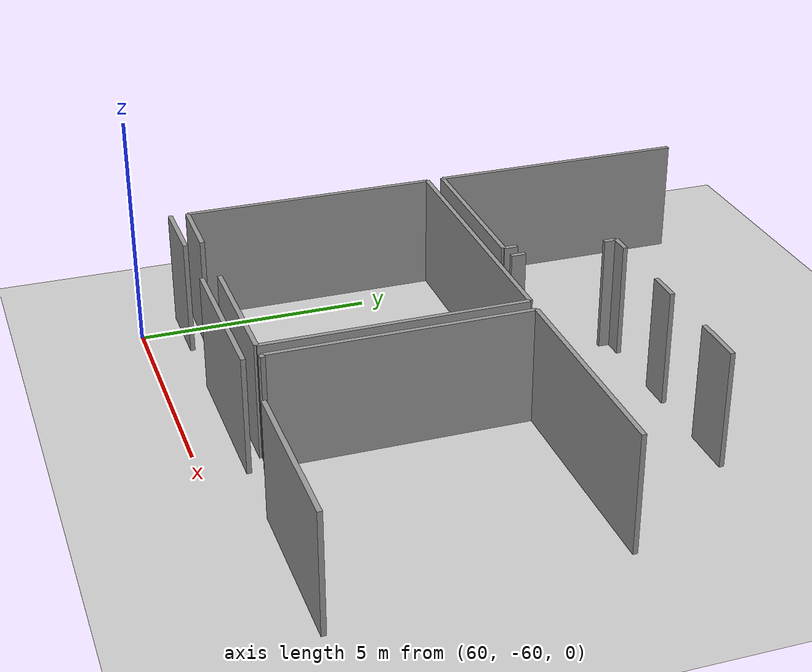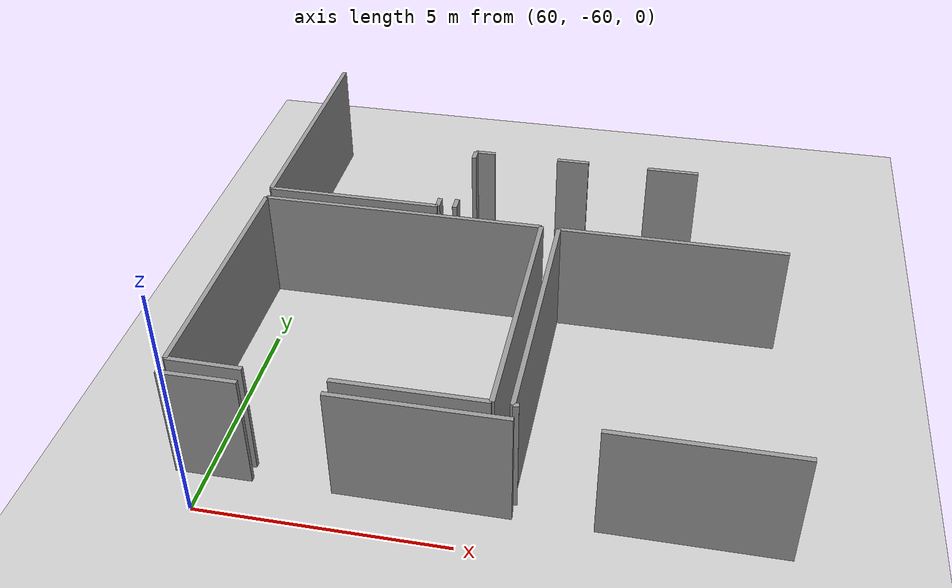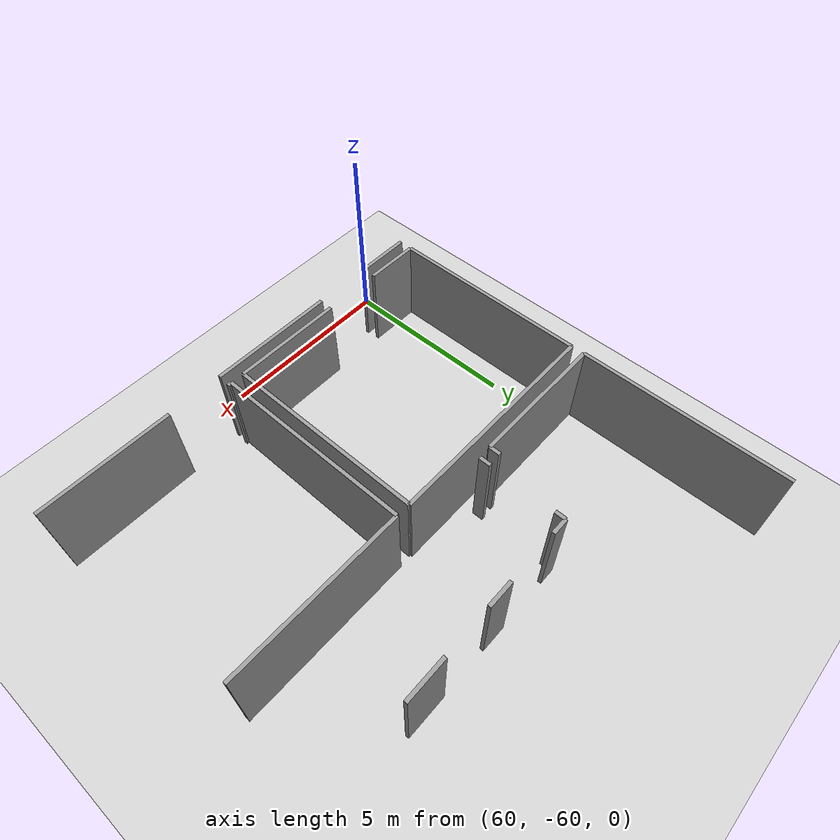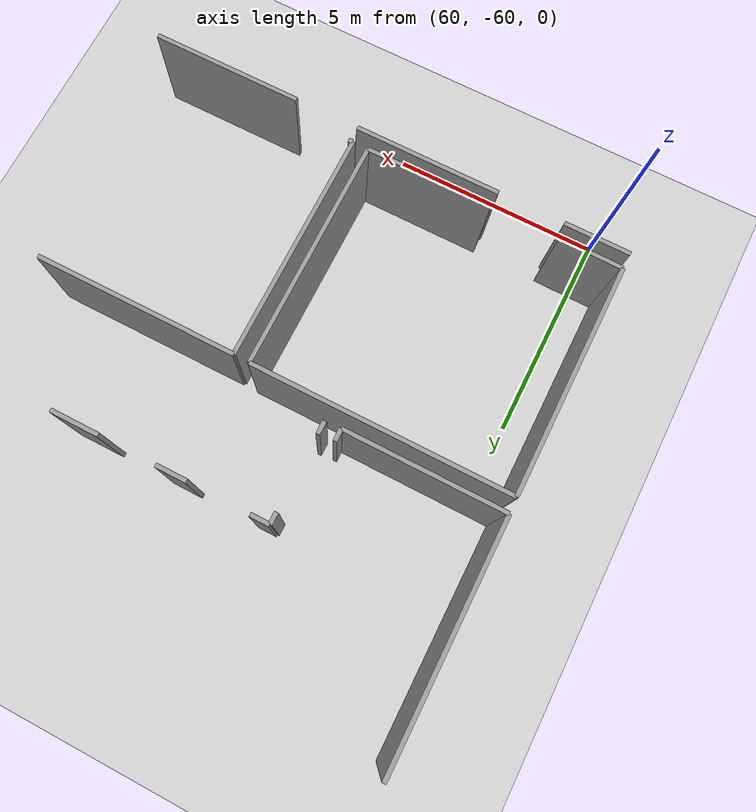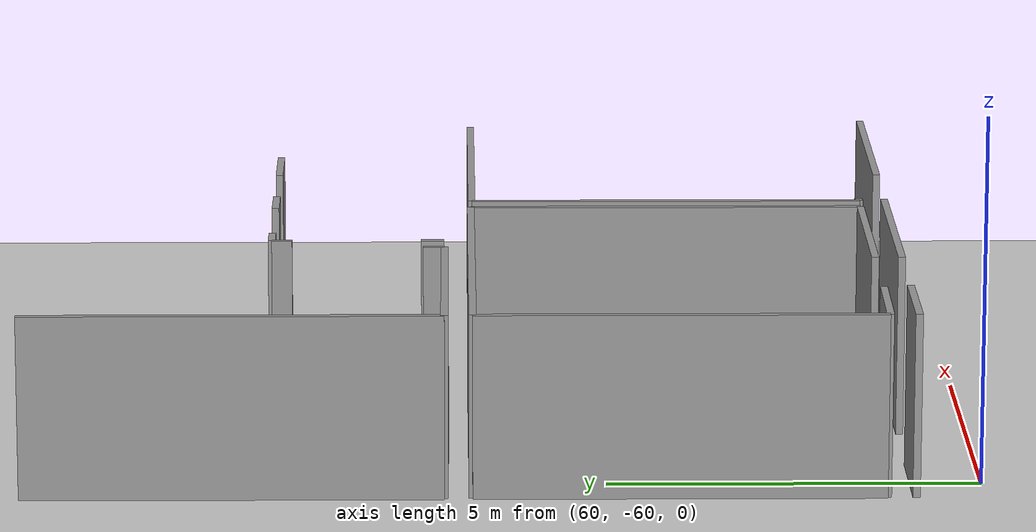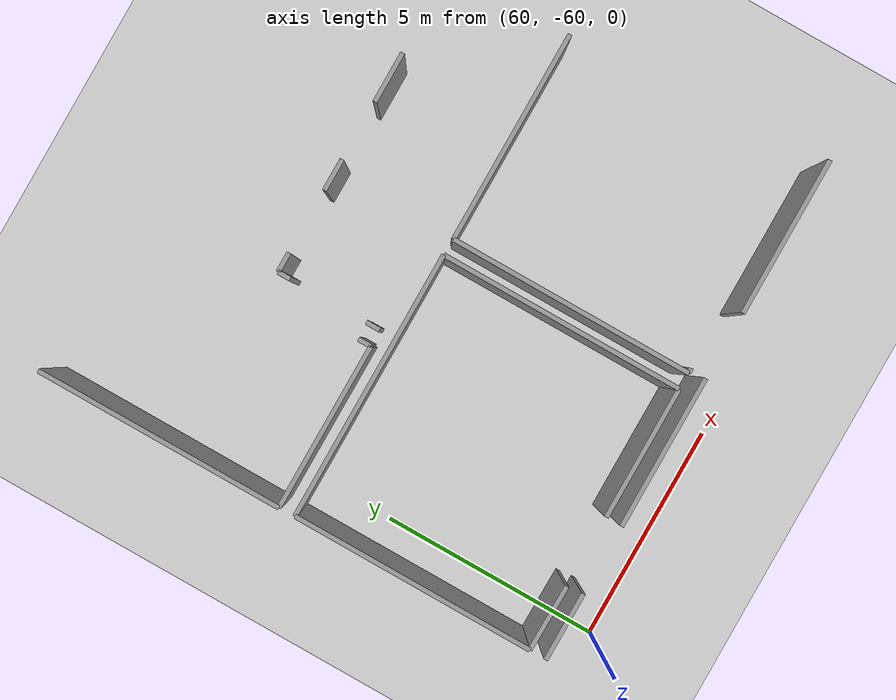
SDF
<sdf version="1.6">
 <world name="default">
  <model name="ground_plane">
   <static>1</static>
   <link name="link">
    <collision name="collision">
     <geometry><plane><normal>0 0 1</normal><size>100 100</size></plane></geometry>
     <surface><friction><ode><mu>100</mu><mu2>50</mu2></ode></friction></surface>
    </collision>
    <visual name="visual">
     <cast_shadows>0</cast_shadows>
     <geometry><plane><normal>0 0 1</normal><size>100 100</size></plane></geometry>
     <material>
      <script><uri>file://media/materials/scripts/gazebo.material</uri><name>Gazebo/Grey</name></script>
     </material>
    </visual>
   </link>
  </model>
  <model name="0510035517_A_40_1_105">
   <static>1</static>
   <link name="Wall_655">
    <collision name="Wall_655_Collision">
     <geometry><box><size>1.54959557258 0.1 2.5</size></box></geometry>
     <pose>0.774797786292 0 1.25 0 0 0</pose>
    </collision>
    <visual name="Wall_655_Visual">
     <pose>0.774797786292 0 1.25 0 0 0</pose>
     <geometry><box><size>1.54959557258 0.1 2.5</size></box></geometry>
     <material>
      <script><uri>file://media/materials/scripts/gazebo.material</uri><name>Gazebo/Grey</name></script>
      <ambient>1 1 1 1</ambient>
     </material>
    </visual>
    <pose>153.941149934 -122.86739991 0 0 0 0.0</pose>
   </link>
   <link name="Wall_656">
    <collision name="Wall_656_Collision">
     <geometry><box><size>3.45475686701 0.1 2.5</size></box></geometry>
     <pose>1.7273784335 0 1.25 0 0 0</pose>
    </collision>
    <visual name="Wall_656_Visual">
     <pose>1.7273784335 0 1.25 0 0 0</pose>
     <geometry><box><size>3.45475686701 0.1 2.5</size></box></geometry>
     <material>
      <script><uri>file://media/materials/scripts/gazebo.material</uri><name>Gazebo/Grey</name></script>
      <ambient>1 1 1 1</ambient>
     </material>
    </visual>
    <pose>157.057623759 -122.86739991 0 0 0 0.0</pose>
   </link>
   <link name="Wall_657">
    <collision name="Wall_657_Collision">
     <geometry><box><size>3.576498097 0.1 2.5</size></box></geometry>
     <pose>1.7882490485 0 1.25 0 0 0</pose>
    </collision>
    <visual name="Wall_657_Visual">
     <pose>1.7882490485 0 1.25 0 0 0</pose>
     <geometry><box><size>3.576498097 0.1 2.5</size></box></geometry>
     <material>
      <script><uri>file://media/materials/scripts/gazebo.material</uri><name>Gazebo/Grey</name></script>
      <ambient>1 1 1 1</ambient>
     </material>
    </visual>
    <pose>162.032748137 -122.86739991 0 0 0 0.0</pose>
   </link>
   <link name="Wall_671">
    <collision name="Wall_671_Collision">
     <geometry><box><size>5.48445511904 0.1 2.5</size></box></geometry>
     <pose>2.74222755952 0 1.25 0 0 0</pose>
    </collision>
    <visual name="Wall_671_Visual">
     <pose>2.74222755952 0 1.25 0 0 0</pose>
     <geometry><box><size>5.48445511904 0.1 2.5</size></box></geometry>
     <material>
      <script><uri>file://media/materials/scripts/gazebo.material</uri><name>Gazebo/Grey</name></script>
      <ambient>1 1 1 1</ambient>
     </material>
    </visual>
    <pose>153.959957556 -122.488451739 0 0 0 1.57079632679</pose>
   </link>
   <link name="Wall_672">
    <collision name="Wall_672_Collision">
     <geometry><box><size>6.10002350953 0.1 2.5</size></box></geometry>
     <pose>3.05001175476 0 1.25 0 0 0</pose>
    </collision>
    <visual name="Wall_672_Visual">
     <pose>3.05001175476 0 1.25 0 0 0</pose>
     <geometry><box><size>6.10002350953 0.1 2.5</size></box></geometry>
     <material>
      <script><uri>file://media/materials/scripts/gazebo.material</uri><name>Gazebo/Grey</name></script>
      <ambient>1 1 1 1</ambient>
     </material>
    </visual>
    <pose>153.959957556 -117.00399662 0 0 0 0.0</pose>
   </link>
   <link name="Wall_673">
    <collision name="Wall_673_Collision">
     <geometry><box><size>5.50046701359 0.1 2.5</size></box></geometry>
     <pose>2.7502335068 0 1.25 0 0 0</pose>
    </collision>
    <visual name="Wall_673_Visual">
     <pose>2.7502335068 0 1.25 0 0 0</pose>
     <geometry><box><size>5.50046701359 0.1 2.5</size></box></geometry>
     <material>
      <script><uri>file://media/materials/scripts/gazebo.material</uri><name>Gazebo/Grey</name></script>
      <ambient>1 1 1 1</ambient>
     </material>
    </visual>
    <pose>160.059981065 -117.00399662 0 0 0 -1.57079632679</pose>
   </link>
   <link name="Wall_674">
    <collision name="Wall_674_Collision">
     <geometry><box><size>2.99295349561 0.1 2.5</size></box></geometry>
     <pose>1.49647674781 0 1.25 0 0 0</pose>
    </collision>
    <visual name="Wall_674_Visual">
     <pose>1.49647674781 0 1.25 0 0 0</pose>
     <geometry><box><size>2.99295349561 0.1 2.5</size></box></geometry>
     <material>
      <script><uri>file://media/materials/scripts/gazebo.material</uri><name>Gazebo/Grey</name></script>
      <ambient>1 1 1 1</ambient>
     </material>
    </visual>
    <pose>160.059981065 -122.504463633 0 0 0 3.14159265359</pose>
   </link>
   <link name="Wall_675">
    <collision name="Wall_675_Collision">
     <geometry><box><size>1.49529169433 0.1 2.5</size></box></geometry>
     <pose>0.747645847166 0 1.25 0 0 0</pose>
    </collision>
    <visual name="Wall_675_Visual">
     <pose>0.747645847166 0 1.25 0 0 0</pose>
     <geometry><box><size>1.49529169433 0.1 2.5</size></box></geometry>
     <material>
      <script><uri>file://media/materials/scripts/gazebo.material</uri><name>Gazebo/Grey</name></script>
      <ambient>1 1 1 1</ambient>
     </material>
    </visual>
    <pose>155.455163518 -122.504463633 0 0 0 3.13088424089</pose>
   </link>
   <link name="Wall_676">
    <collision name="Wall_676_Collision">
     <geometry><box><size>5.4986879142 0.1 2.5</size></box></geometry>
     <pose>2.7493439571 0 1.25 0 0 0</pose>
    </collision>
    <visual name="Wall_676_Visual">
     <pose>2.7493439571 0 1.25 0 0 0</pose>
     <geometry><box><size>5.4986879142 0.1 2.5</size></box></geometry>
     <material>
      <script><uri>file://media/materials/scripts/gazebo.material</uri><name>Gazebo/Grey</name></script>
      <ambient>1 1 1 1</ambient>
     </material>
    </visual>
    <pose>160.43511688 -122.518188114 0 0 0 1.57079632679</pose>
   </link>
   <link name="Wall_677">
    <collision name="Wall_677_Collision">
     <geometry><box><size>4.77815265944 0.1 2.5</size></box></geometry>
     <pose>2.38907632972 0 1.25 0 0 0</pose>
    </collision>
    <visual name="Wall_677_Visual">
     <pose>2.38907632972 0 1.25 0 0 0</pose>
     <geometry><box><size>4.77815265944 0.1 2.5</size></box></geometry>
     <material>
      <script><uri>file://media/materials/scripts/gazebo.material</uri><name>Gazebo/Grey</name></script>
      <ambient>1 1 1 1</ambient>
     </material>
    </visual>
    <pose>160.43511688 -117.0195002 0 0 0 0.0</pose>
   </link>
   <link name="Wall_682">
    <collision name="Wall_682_Collision">
     <geometry><box><size>0.110606219203 0.1 2.5</size></box></geometry>
     <pose>0.0553031096015 0 1.25 0 0 0</pose>
    </collision>
    <visual name="Wall_682_Visual">
     <pose>0.0553031096015 0 1.25 0 0 0</pose>
     <geometry><box><size>0.110606219203 0.1 2.5</size></box></geometry>
     <material>
      <script><uri>file://media/materials/scripts/gazebo.material</uri><name>Gazebo/Grey</name></script>
      <ambient>1 1 1 1</ambient>
     </material>
    </visual>
    <pose>160.544404415 -122.501159592 0 0 0 -2.98702159451</pose>
   </link>
   <link name="Wall_683">
    <collision name="Wall_683_Collision">
     <geometry><box><size>0.311596551089 0.1 2.5</size></box></geometry>
     <pose>0.155798275544 0 1.25 0 0 0</pose>
    </collision>
    <visual name="Wall_683_Visual">
     <pose>0.155798275544 0 1.25 0 0 0</pose>
     <geometry><box><size>0.311596551089 0.1 2.5</size></box></geometry>
     <material>
      <script><uri>file://media/materials/scripts/gazebo.material</uri><name>Gazebo/Grey</name></script>
      <ambient>1 1 1 1</ambient>
     </material>
    </visual>
    <pose>158.09534702 -116.626319234 0 0 0 1.57079632679</pose>
   </link>
   <link name="Wall_684">
    <collision name="Wall_684_Collision">
     <geometry><box><size>0.281860175495 0.1 2.5</size></box></geometry>
     <pose>0.140930087748 0 1.25 0 0 0</pose>
    </collision>
    <visual name="Wall_684_Visual">
     <pose>0.140930087748 0 1.25 0 0 0</pose>
     <geometry><box><size>0.281860175495 0.1 2.5</size></box></geometry>
     <material>
      <script><uri>file://media/materials/scripts/gazebo.material</uri><name>Gazebo/Grey</name></script>
      <ambient>1 1 1 1</ambient>
     </material>
    </visual>
    <pose>158.09534702 -114.53638576 0 0 0 1.57079632679</pose>
   </link>
   <link name="Wall_685">
    <collision name="Wall_685_Collision">
     <geometry><box><size>0.450620460914 0.1 2.5</size></box></geometry>
     <pose>0.225310230457 0 1.25 0 0 0</pose>
    </collision>
    <visual name="Wall_685_Visual">
     <pose>0.225310230457 0 1.25 0 0 0</pose>
     <geometry><box><size>0.450620460914 0.1 2.5</size></box></geometry>
     <material>
      <script><uri>file://media/materials/scripts/gazebo.material</uri><name>Gazebo/Grey</name></script>
      <ambient>1 1 1 1</ambient>
     </material>
    </visual>
    <pose>158.09534702 -114.254525584 0 0 0 0.0</pose>
   </link>
   <link name="Wall_686">
    <collision name="Wall_686_Collision">
     <geometry><box><size>0.726635024113 0.1 2.5</size></box></geometry>
     <pose>0.363317512057 0 1.25 0 0 0</pose>
    </collision>
    <visual name="Wall_686_Visual">
     <pose>0.363317512057 0 1.25 0 0 0</pose>
     <geometry><box><size>0.726635024113 0.1 2.5</size></box></geometry>
     <material>
      <script><uri>file://media/materials/scripts/gazebo.material</uri><name>Gazebo/Grey</name></script>
      <ambient>1 1 1 1</ambient>
     </material>
    </visual>
    <pose>159.996441801 -114.254525584 0 0 0 0.0</pose>
   </link>
   <link name="Wall_687">
    <collision name="Wall_687_Collision">
     <geometry><box><size>1.14497753887 0.1 2.5</size></box></geometry>
     <pose>0.572488769435 0 1.25 0 0 0</pose>
    </collision>
    <visual name="Wall_687_Visual">
     <pose>0.572488769435 0 1.25 0 0 0</pose>
     <geometry><box><size>1.14497753887 0.1 2.5</size></box></geometry>
     <material>
      <script><uri>file://media/materials/scripts/gazebo.material</uri><name>Gazebo/Grey</name></script>
      <ambient>1 1 1 1</ambient>
     </material>
    </visual>
    <pose>162.064517769 -114.254525584 0 0 0 0.0</pose>
   </link>
   <link name="Wall_713">
    <collision name="Wall_713_Collision">
     <geometry><box><size>5.62297071475 0.1 2.5</size></box></geometry>
     <pose>2.81148535738 0 1.25 0 0 0</pose>
    </collision>
    <visual name="Wall_713_Visual">
     <pose>2.81148535738 0 1.25 0 0 0</pose>
     <geometry><box><size>5.62297071475 0.1 2.5</size></box></geometry>
     <material>
      <script><uri>file://media/materials/scripts/gazebo.material</uri><name>Gazebo/Grey</name></script>
      <ambient>1 1 1 1</ambient>
     </material>
    </visual>
    <pose>153.947249703 -116.633689789 0 0 0 1.57079632679</pose>
   </link>
   <link name="Wall_716">
    <collision name="Wall_716_Collision">
     <geometry><box><size>0.296347127708 0.1 2.5</size></box></geometry>
     <pose>0.148173563854 0 1.25 0 0 0</pose>
    </collision>
    <visual name="Wall_716_Visual">
     <pose>0.148173563854 0 1.25 0 0 0</pose>
     <geometry><box><size>0.296347127708 0.1 2.5</size></box></geometry>
     <material>
      <script><uri>file://media/materials/scripts/gazebo.material</uri><name>Gazebo/Grey</name></script>
      <ambient>1 1 1 1</ambient>
     </material>
    </visual>
    <pose>157.718940419 -116.342425802 0 0 0 -1.57079632679</pose>
   </link>
   <link name="Wall_717">
    <collision name="Wall_717_Collision">
     <geometry><box><size>3.77169414157 0.1 2.5</size></box></geometry>
     <pose>1.88584707079 0 1.25 0 0 0</pose>
    </collision>
    <visual name="Wall_717_Visual">
     <pose>1.88584707079 0 1.25 0 0 0</pose>
     <geometry><box><size>3.77169414157 0.1 2.5</size></box></geometry>
     <material>
      <script><uri>file://media/materials/scripts/gazebo.material</uri><name>Gazebo/Grey</name></script>
      <ambient>1 1 1 1</ambient>
     </material>
    </visual>
    <pose>157.718940419 -116.63877293 0 0 0 3.14024494551</pose>
   </link>
   <pose>-94.6 63.7835382475 0 0 0 0</pose>
  </model>
 </world>
</sdf>
